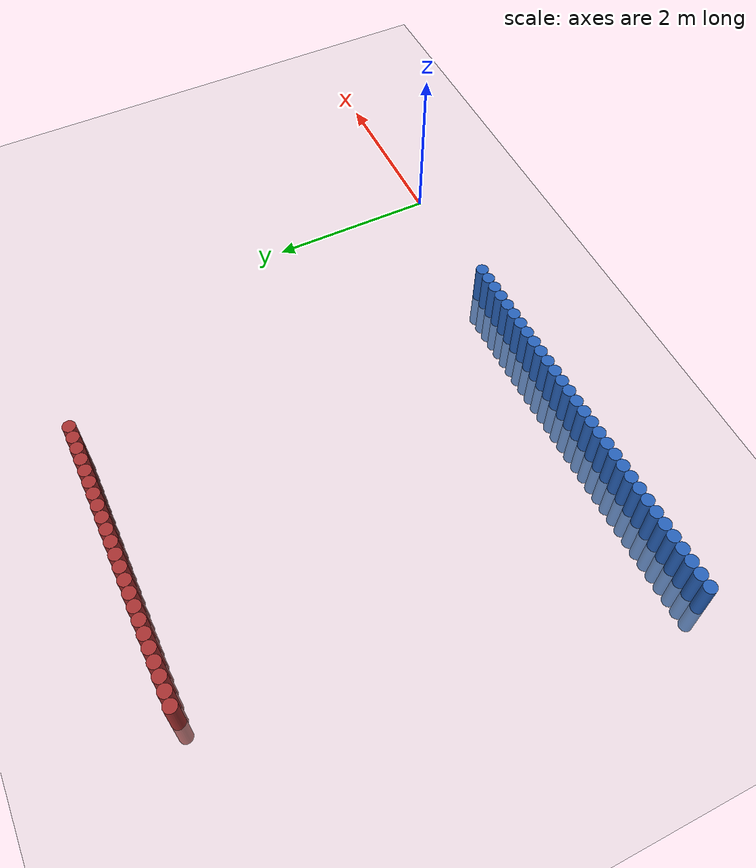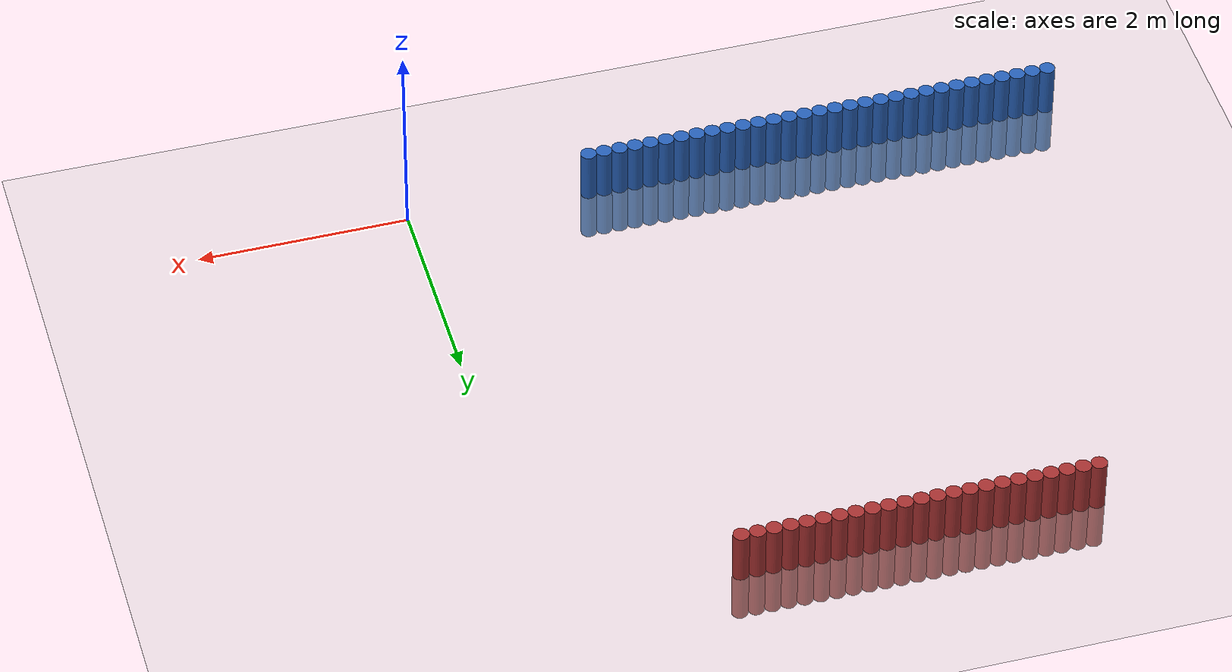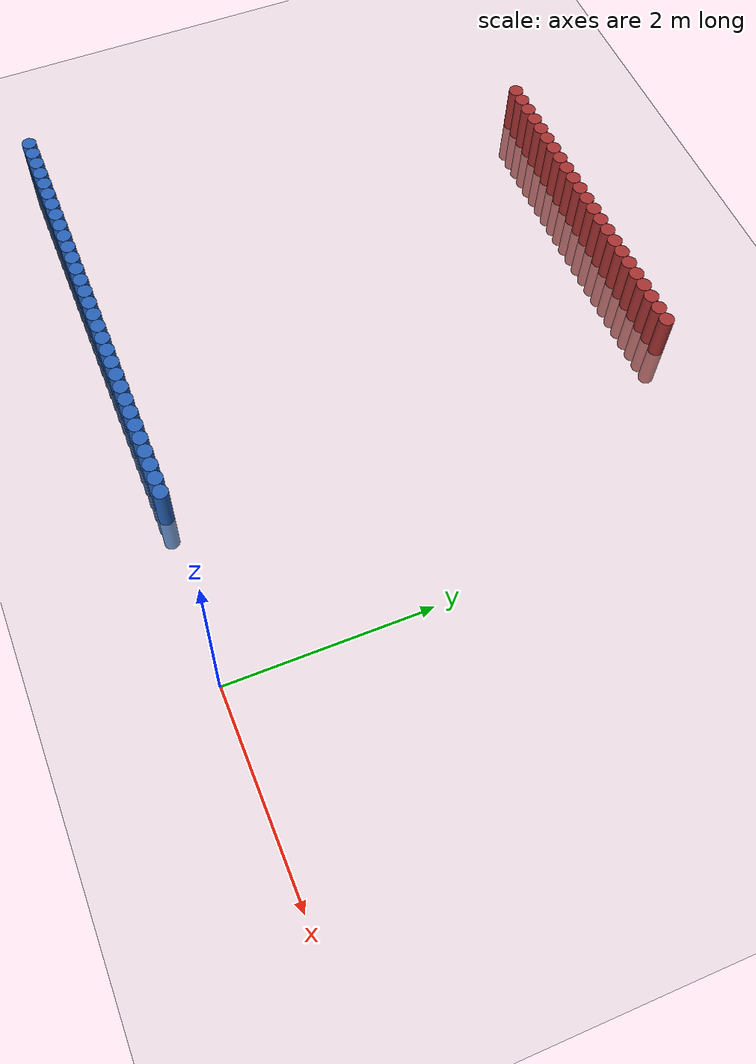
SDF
<sdf version="1.6">
 <world name="default">
  <model name="ground_plane">
   <static>1</static>
   <link name="link">
    <collision name="collision">
     <geometry><plane><normal>0 0 1</normal><size>100 100</size></plane></geometry>
     <surface><friction><ode><mu>100</mu><mu2>50</mu2></ode></friction></surface>
    </collision>
    <visual name="visual">
     <cast_shadows>0</cast_shadows>
     <geometry><plane><normal>0 0 1</normal><size>100 100</size></plane></geometry>
     <material>
      <script><uri>file://media/materials/scripts/gazebo.material</uri><name>Gazebo/Grey</name></script>
     </material>
    </visual>
   </link>
  </model>
  <model name="unit_cylinder_11">
   <static>1</static>
   <pose>-1.725000 0.075000 0.000000 0.000000 0.000000 0.000000</pose>
   <link name="link">
    <inertial>
     <mass>1</mass>
     <inertia><ixx>0.145833</ixx><ixy>0</ixy><ixz>0</ixz><iyy>0.145833</iyy><iyz>0</iyz><izz>0.125</izz></inertia>
    </inertial>
    <collision name="collision">
     <geometry><cylinder><radius>0.075000</radius><length>1</length></cylinder></geometry>
    </collision>
    <visual name="visual">
     <geometry><cylinder><radius>0.075000</radius><length>1</length></cylinder></geometry>
     <material>
      <ambient>0.152000 0.379000 0.720000 1</ambient>
      <diffuse>0.152000 0.379000 0.720000 1</diffuse>
     </material>
     <material>
      <script><name>Gazebo/Grey</name><uri>file://media/materials/scripts/gazebo.material</uri></script>
     </material>
    </visual>
   </link>
  </model>
  <model name="unit_cylinder_12">
   <static>1</static>
   <pose>-1.875000 0.075000 0.000000 0.000000 0.000000 0.000000</pose>
   <link name="link">
    <inertial>
     <mass>1</mass>
     <inertia><ixx>0.145833</ixx><ixy>0</ixy><ixz>0</ixz><iyy>0.145833</iyy><iyz>0</iyz><izz>0.125</izz></inertia>
    </inertial>
    <collision name="collision">
     <geometry><cylinder><radius>0.075000</radius><length>1</length></cylinder></geometry>
    </collision>
    <visual name="visual">
     <geometry><cylinder><radius>0.075000</radius><length>1</length></cylinder></geometry>
     <material>
      <ambient>0.152000 0.379000 0.720000 1</ambient>
      <diffuse>0.152000 0.379000 0.720000 1</diffuse>
     </material>
     <material>
      <script><name>Gazebo/Grey</name><uri>file://media/materials/scripts/gazebo.material</uri></script>
     </material>
    </visual>
   </link>
  </model>
  <model name="unit_cylinder_13">
   <static>1</static>
   <pose>-2.025000 0.075000 0.000000 0.000000 0.000000 0.000000</pose>
   <link name="link">
    <inertial>
     <mass>1</mass>
     <inertia><ixx>0.145833</ixx><ixy>0</ixy><ixz>0</ixz><iyy>0.145833</iyy><iyz>0</iyz><izz>0.125</izz></inertia>
    </inertial>
    <collision name="collision">
     <geometry><cylinder><radius>0.075000</radius><length>1</length></cylinder></geometry>
    </collision>
    <visual name="visual">
     <geometry><cylinder><radius>0.075000</radius><length>1</length></cylinder></geometry>
     <material>
      <ambient>0.152000 0.379000 0.720000 1</ambient>
      <diffuse>0.152000 0.379000 0.720000 1</diffuse>
     </material>
     <material>
      <script><name>Gazebo/Grey</name><uri>file://media/materials/scripts/gazebo.material</uri></script>
     </material>
    </visual>
   </link>
  </model>
  <model name="unit_cylinder_14">
   <static>1</static>
   <pose>-2.175000 0.075000 0.000000 0.000000 0.000000 0.000000</pose>
   <link name="link">
    <inertial>
     <mass>1</mass>
     <inertia><ixx>0.145833</ixx><ixy>0</ixy><ixz>0</ixz><iyy>0.145833</iyy><iyz>0</iyz><izz>0.125</izz></inertia>
    </inertial>
    <collision name="collision">
     <geometry><cylinder><radius>0.075000</radius><length>1</length></cylinder></geometry>
    </collision>
    <visual name="visual">
     <geometry><cylinder><radius>0.075000</radius><length>1</length></cylinder></geometry>
     <material>
      <ambient>0.152000 0.379000 0.720000 1</ambient>
      <diffuse>0.152000 0.379000 0.720000 1</diffuse>
     </material>
     <material>
      <script><name>Gazebo/Grey</name><uri>file://media/materials/scripts/gazebo.material</uri></script>
     </material>
    </visual>
   </link>
  </model>
  <model name="unit_cylinder_15">
   <static>1</static>
   <pose>-2.325000 0.075000 0.000000 0.000000 0.000000 0.000000</pose>
   <link name="link">
    <inertial>
     <mass>1</mass>
     <inertia><ixx>0.145833</ixx><ixy>0</ixy><ixz>0</ixz><iyy>0.145833</iyy><iyz>0</iyz><izz>0.125</izz></inertia>
    </inertial>
    <collision name="collision">
     <geometry><cylinder><radius>0.075000</radius><length>1</length></cylinder></geometry>
    </collision>
    <visual name="visual">
     <geometry><cylinder><radius>0.075000</radius><length>1</length></cylinder></geometry>
     <material>
      <ambient>0.152000 0.379000 0.720000 1</ambient>
      <diffuse>0.152000 0.379000 0.720000 1</diffuse>
     </material>
     <material>
      <script><name>Gazebo/Grey</name><uri>file://media/materials/scripts/gazebo.material</uri></script>
     </material>
    </visual>
   </link>
  </model>
  <model name="unit_cylinder_16">
   <static>1</static>
   <pose>-2.475000 0.075000 0.000000 0.000000 0.000000 0.000000</pose>
   <link name="link">
    <inertial>
     <mass>1</mass>
     <inertia><ixx>0.145833</ixx><ixy>0</ixy><ixz>0</ixz><iyy>0.145833</iyy><iyz>0</iyz><izz>0.125</izz></inertia>
    </inertial>
    <collision name="collision">
     <geometry><cylinder><radius>0.075000</radius><length>1</length></cylinder></geometry>
    </collision>
    <visual name="visual">
     <geometry><cylinder><radius>0.075000</radius><length>1</length></cylinder></geometry>
     <material>
      <ambient>0.152000 0.379000 0.720000 1</ambient>
      <diffuse>0.152000 0.379000 0.720000 1</diffuse>
     </material>
     <material>
      <script><name>Gazebo/Grey</name><uri>file://media/materials/scripts/gazebo.material</uri></script>
     </material>
    </visual>
   </link>
  </model>
  <model name="unit_cylinder_17">
   <static>1</static>
   <pose>-2.625000 0.075000 0.000000 0.000000 0.000000 0.000000</pose>
   <link name="link">
    <inertial>
     <mass>1</mass>
     <inertia><ixx>0.145833</ixx><ixy>0</ixy><ixz>0</ixz><iyy>0.145833</iyy><iyz>0</iyz><izz>0.125</izz></inertia>
    </inertial>
    <collision name="collision">
     <geometry><cylinder><radius>0.075000</radius><length>1</length></cylinder></geometry>
    </collision>
    <visual name="visual">
     <geometry><cylinder><radius>0.075000</radius><length>1</length></cylinder></geometry>
     <material>
      <ambient>0.152000 0.379000 0.720000 1</ambient>
      <diffuse>0.152000 0.379000 0.720000 1</diffuse>
     </material>
     <material>
      <script><name>Gazebo/Grey</name><uri>file://media/materials/scripts/gazebo.material</uri></script>
     </material>
    </visual>
   </link>
  </model>
  <model name="unit_cylinder_18">
   <static>1</static>
   <pose>-2.775000 0.075000 0.000000 0.000000 0.000000 0.000000</pose>
   <link name="link">
    <inertial>
     <mass>1</mass>
     <inertia><ixx>0.145833</ixx><ixy>0</ixy><ixz>0</ixz><iyy>0.145833</iyy><iyz>0</iyz><izz>0.125</izz></inertia>
    </inertial>
    <collision name="collision">
     <geometry><cylinder><radius>0.075000</radius><length>1</length></cylinder></geometry>
    </collision>
    <visual name="visual">
     <geometry><cylinder><radius>0.075000</radius><length>1</length></cylinder></geometry>
     <material>
      <ambient>0.152000 0.379000 0.720000 1</ambient>
      <diffuse>0.152000 0.379000 0.720000 1</diffuse>
     </material>
     <material>
      <script><name>Gazebo/Grey</name><uri>file://media/materials/scripts/gazebo.material</uri></script>
     </material>
    </visual>
   </link>
  </model>
  <model name="unit_cylinder_19">
   <static>1</static>
   <pose>-2.925000 0.075000 0.000000 0.000000 0.000000 0.000000</pose>
   <link name="link">
    <inertial>
     <mass>1</mass>
     <inertia><ixx>0.145833</ixx><ixy>0</ixy><ixz>0</ixz><iyy>0.145833</iyy><iyz>0</iyz><izz>0.125</izz></inertia>
    </inertial>
    <collision name="collision">
     <geometry><cylinder><radius>0.075000</radius><length>1</length></cylinder></geometry>
    </collision>
    <visual name="visual">
     <geometry><cylinder><radius>0.075000</radius><length>1</length></cylinder></geometry>
     <material>
      <ambient>0.152000 0.379000 0.720000 1</ambient>
      <diffuse>0.152000 0.379000 0.720000 1</diffuse>
     </material>
     <material>
      <script><name>Gazebo/Grey</name><uri>file://media/materials/scripts/gazebo.material</uri></script>
     </material>
    </visual>
   </link>
  </model>
  <model name="unit_cylinder_20">
   <static>1</static>
   <pose>-3.075000 0.075000 0.000000 0.000000 0.000000 0.000000</pose>
   <link name="link">
    <inertial>
     <mass>1</mass>
     <inertia><ixx>0.145833</ixx><ixy>0</ixy><ixz>0</ixz><iyy>0.145833</iyy><iyz>0</iyz><izz>0.125</izz></inertia>
    </inertial>
    <collision name="collision">
     <geometry><cylinder><radius>0.075000</radius><length>1</length></cylinder></geometry>
    </collision>
    <visual name="visual">
     <geometry><cylinder><radius>0.075000</radius><length>1</length></cylinder></geometry>
     <material>
      <ambient>0.152000 0.379000 0.720000 1</ambient>
      <diffuse>0.152000 0.379000 0.720000 1</diffuse>
     </material>
     <material>
      <script><name>Gazebo/Grey</name><uri>file://media/materials/scripts/gazebo.material</uri></script>
     </material>
    </visual>
   </link>
  </model>
  <model name="unit_cylinder_21">
   <static>1</static>
   <pose>-3.225000 0.075000 0.000000 0.000000 0.000000 0.000000</pose>
   <link name="link">
    <inertial>
     <mass>1</mass>
     <inertia><ixx>0.145833</ixx><ixy>0</ixy><ixz>0</ixz><iyy>0.145833</iyy><iyz>0</iyz><izz>0.125</izz></inertia>
    </inertial>
    <collision name="collision">
     <geometry><cylinder><radius>0.075000</radius><length>1</length></cylinder></geometry>
    </collision>
    <visual name="visual">
     <geometry><cylinder><radius>0.075000</radius><length>1</length></cylinder></geometry>
     <material>
      <ambient>0.152000 0.379000 0.720000 1</ambient>
      <diffuse>0.152000 0.379000 0.720000 1</diffuse>
     </material>
     <material>
      <script><name>Gazebo/Grey</name><uri>file://media/materials/scripts/gazebo.material</uri></script>
     </material>
    </visual>
   </link>
  </model>
  <model name="unit_cylinder_22">
   <static>1</static>
   <pose>-3.375000 0.075000 0.000000 0.000000 0.000000 0.000000</pose>
   <link name="link">
    <inertial>
     <mass>1</mass>
     <inertia><ixx>0.145833</ixx><ixy>0</ixy><ixz>0</ixz><iyy>0.145833</iyy><iyz>0</iyz><izz>0.125</izz></inertia>
    </inertial>
    <collision name="collision">
     <geometry><cylinder><radius>0.075000</radius><length>1</length></cylinder></geometry>
    </collision>
    <visual name="visual">
     <geometry><cylinder><radius>0.075000</radius><length>1</length></cylinder></geometry>
     <material>
      <ambient>0.152000 0.379000 0.720000 1</ambient>
      <diffuse>0.152000 0.379000 0.720000 1</diffuse>
     </material>
     <material>
      <script><name>Gazebo/Grey</name><uri>file://media/materials/scripts/gazebo.material</uri></script>
     </material>
    </visual>
   </link>
  </model>
  <model name="unit_cylinder_23">
   <static>1</static>
   <pose>-3.525000 0.075000 0.000000 0.000000 0.000000 0.000000</pose>
   <link name="link">
    <inertial>
     <mass>1</mass>
     <inertia><ixx>0.145833</ixx><ixy>0</ixy><ixz>0</ixz><iyy>0.145833</iyy><iyz>0</iyz><izz>0.125</izz></inertia>
    </inertial>
    <collision name="collision">
     <geometry><cylinder><radius>0.075000</radius><length>1</length></cylinder></geometry>
    </collision>
    <visual name="visual">
     <geometry><cylinder><radius>0.075000</radius><length>1</length></cylinder></geometry>
     <material>
      <ambient>0.152000 0.379000 0.720000 1</ambient>
      <diffuse>0.152000 0.379000 0.720000 1</diffuse>
     </material>
     <material>
      <script><name>Gazebo/Grey</name><uri>file://media/materials/scripts/gazebo.material</uri></script>
     </material>
    </visual>
   </link>
  </model>
  <model name="unit_cylinder_24">
   <static>1</static>
   <pose>-3.675000 0.075000 0.000000 0.000000 0.000000 0.000000</pose>
   <link name="link">
    <inertial>
     <mass>1</mass>
     <inertia><ixx>0.145833</ixx><ixy>0</ixy><ixz>0</ixz><iyy>0.145833</iyy><iyz>0</iyz><izz>0.125</izz></inertia>
    </inertial>
    <collision name="collision">
     <geometry><cylinder><radius>0.075000</radius><length>1</length></cylinder></geometry>
    </collision>
    <visual name="visual">
     <geometry><cylinder><radius>0.075000</radius><length>1</length></cylinder></geometry>
     <material>
      <ambient>0.152000 0.379000 0.720000 1</ambient>
      <diffuse>0.152000 0.379000 0.720000 1</diffuse>
     </material>
     <material>
      <script><name>Gazebo/Grey</name><uri>file://media/materials/scripts/gazebo.material</uri></script>
     </material>
    </visual>
   </link>
  </model>
  <model name="unit_cylinder_25">
   <static>1</static>
   <pose>-3.825000 0.075000 0.000000 0.000000 0.000000 0.000000</pose>
   <link name="link">
    <inertial>
     <mass>1</mass>
     <inertia><ixx>0.145833</ixx><ixy>0</ixy><ixz>0</ixz><iyy>0.145833</iyy><iyz>0</iyz><izz>0.125</izz></inertia>
    </inertial>
    <collision name="collision">
     <geometry><cylinder><radius>0.075000</radius><length>1</length></cylinder></geometry>
    </collision>
    <visual name="visual">
     <geometry><cylinder><radius>0.075000</radius><length>1</length></cylinder></geometry>
     <material>
      <ambient>0.152000 0.379000 0.720000 1</ambient>
      <diffuse>0.152000 0.379000 0.720000 1</diffuse>
     </material>
     <material>
      <script><name>Gazebo/Grey</name><uri>file://media/materials/scripts/gazebo.material</uri></script>
     </material>
    </visual>
   </link>
  </model>
  <model name="unit_cylinder_26">
   <static>1</static>
   <pose>-3.975000 0.075000 0.000000 0.000000 0.000000 0.000000</pose>
   <link name="link">
    <inertial>
     <mass>1</mass>
     <inertia><ixx>0.145833</ixx><ixy>0</ixy><ixz>0</ixz><iyy>0.145833</iyy><iyz>0</iyz><izz>0.125</izz></inertia>
    </inertial>
    <collision name="collision">
     <geometry><cylinder><radius>0.075000</radius><length>1</length></cylinder></geometry>
    </collision>
    <visual name="visual">
     <geometry><cylinder><radius>0.075000</radius><length>1</length></cylinder></geometry>
     <material>
      <ambient>0.152000 0.379000 0.720000 1</ambient>
      <diffuse>0.152000 0.379000 0.720000 1</diffuse>
     </material>
     <material>
      <script><name>Gazebo/Grey</name><uri>file://media/materials/scripts/gazebo.material</uri></script>
     </material>
    </visual>
   </link>
  </model>
  <model name="unit_cylinder_27">
   <static>1</static>
   <pose>-4.125000 0.075000 0.000000 0.000000 0.000000 0.000000</pose>
   <link name="link">
    <inertial>
     <mass>1</mass>
     <inertia><ixx>0.145833</ixx><ixy>0</ixy><ixz>0</ixz><iyy>0.145833</iyy><iyz>0</iyz><izz>0.125</izz></inertia>
    </inertial>
    <collision name="collision">
     <geometry><cylinder><radius>0.075000</radius><length>1</length></cylinder></geometry>
    </collision>
    <visual name="visual">
     <geometry><cylinder><radius>0.075000</radius><length>1</length></cylinder></geometry>
     <material>
      <ambient>0.152000 0.379000 0.720000 1</ambient>
      <diffuse>0.152000 0.379000 0.720000 1</diffuse>
     </material>
     <material>
      <script><name>Gazebo/Grey</name><uri>file://media/materials/scripts/gazebo.material</uri></script>
     </material>
    </visual>
   </link>
  </model>
  <model name="unit_cylinder_28">
   <static>1</static>
   <pose>-4.275000 0.075000 0.000000 0.000000 0.000000 0.000000</pose>
   <link name="link">
    <inertial>
     <mass>1</mass>
     <inertia><ixx>0.145833</ixx><ixy>0</ixy><ixz>0</ixz><iyy>0.145833</iyy><iyz>0</iyz><izz>0.125</izz></inertia>
    </inertial>
    <collision name="collision">
     <geometry><cylinder><radius>0.075000</radius><length>1</length></cylinder></geometry>
    </collision>
    <visual name="visual">
     <geometry><cylinder><radius>0.075000</radius><length>1</length></cylinder></geometry>
     <material>
      <ambient>0.152000 0.379000 0.720000 1</ambient>
      <diffuse>0.152000 0.379000 0.720000 1</diffuse>
     </material>
     <material>
      <script><name>Gazebo/Grey</name><uri>file://media/materials/scripts/gazebo.material</uri></script>
     </material>
    </visual>
   </link>
  </model>
  <model name="unit_cylinder_29">
   <static>1</static>
   <pose>-4.425000 0.075000 0.000000 0.000000 0.000000 0.000000</pose>
   <link name="link">
    <inertial>
     <mass>1</mass>
     <inertia><ixx>0.145833</ixx><ixy>0</ixy><ixz>0</ixz><iyy>0.145833</iyy><iyz>0</iyz><izz>0.125</izz></inertia>
    </inertial>
    <collision name="collision">
     <geometry><cylinder><radius>0.075000</radius><length>1</length></cylinder></geometry>
    </collision>
    <visual name="visual">
     <geometry><cylinder><radius>0.075000</radius><length>1</length></cylinder></geometry>
     <material>
      <ambient>0.152000 0.379000 0.720000 1</ambient>
      <diffuse>0.152000 0.379000 0.720000 1</diffuse>
     </material>
     <material>
      <script><name>Gazebo/Grey</name><uri>file://media/materials/scripts/gazebo.material</uri></script>
     </material>
    </visual>
   </link>
  </model>
  <model name="unit_cylinder_30">
   <static>1</static>
   <pose>-4.575000 0.075000 0.000000 0.000000 0.000000 0.000000</pose>
   <link name="link">
    <inertial>
     <mass>1</mass>
     <inertia><ixx>0.145833</ixx><ixy>0</ixy><ixz>0</ixz><iyy>0.145833</iyy><iyz>0</iyz><izz>0.125</izz></inertia>
    </inertial>
    <collision name="collision">
     <geometry><cylinder><radius>0.075000</radius><length>1</length></cylinder></geometry>
    </collision>
    <visual name="visual">
     <geometry><cylinder><radius>0.075000</radius><length>1</length></cylinder></geometry>
     <material>
      <ambient>0.152000 0.379000 0.720000 1</ambient>
      <diffuse>0.152000 0.379000 0.720000 1</diffuse>
     </material>
     <material>
      <script><name>Gazebo/Grey</name><uri>file://media/materials/scripts/gazebo.material</uri></script>
     </material>
    </visual>
   </link>
  </model>
  <model name="unit_cylinder_31">
   <static>1</static>
   <pose>-4.725000 0.075000 0.000000 0.000000 0.000000 0.000000</pose>
   <link name="link">
    <inertial>
     <mass>1</mass>
     <inertia><ixx>0.145833</ixx><ixy>0</ixy><ixz>0</ixz><iyy>0.145833</iyy><iyz>0</iyz><izz>0.125</izz></inertia>
    </inertial>
    <collision name="collision">
     <geometry><cylinder><radius>0.075000</radius><length>1</length></cylinder></geometry>
    </collision>
    <visual name="visual">
     <geometry><cylinder><radius>0.075000</radius><length>1</length></cylinder></geometry>
     <material>
      <ambient>0.152000 0.379000 0.720000 1</ambient>
      <diffuse>0.152000 0.379000 0.720000 1</diffuse>
     </material>
     <material>
      <script><name>Gazebo/Grey</name><uri>file://media/materials/scripts/gazebo.material</uri></script>
     </material>
    </visual>
   </link>
  </model>
  <model name="unit_cylinder_32">
   <static>1</static>
   <pose>-4.875000 0.075000 0.000000 0.000000 0.000000 0.000000</pose>
   <link name="link">
    <inertial>
     <mass>1</mass>
     <inertia><ixx>0.145833</ixx><ixy>0</ixy><ixz>0</ixz><iyy>0.145833</iyy><iyz>0</iyz><izz>0.125</izz></inertia>
    </inertial>
    <collision name="collision">
     <geometry><cylinder><radius>0.075000</radius><length>1</length></cylinder></geometry>
    </collision>
    <visual name="visual">
     <geometry><cylinder><radius>0.075000</radius><length>1</length></cylinder></geometry>
     <material>
      <ambient>0.152000 0.379000 0.720000 1</ambient>
      <diffuse>0.152000 0.379000 0.720000 1</diffuse>
     </material>
     <material>
      <script><name>Gazebo/Grey</name><uri>file://media/materials/scripts/gazebo.material</uri></script>
     </material>
    </visual>
   </link>
  </model>
  <model name="unit_cylinder_33">
   <static>1</static>
   <pose>-5.025000 0.075000 0.000000 0.000000 0.000000 0.000000</pose>
   <link name="link">
    <inertial>
     <mass>1</mass>
     <inertia><ixx>0.145833</ixx><ixy>0</ixy><ixz>0</ixz><iyy>0.145833</iyy><iyz>0</iyz><izz>0.125</izz></inertia>
    </inertial>
    <collision name="collision">
     <geometry><cylinder><radius>0.075000</radius><length>1</length></cylinder></geometry>
    </collision>
    <visual name="visual">
     <geometry><cylinder><radius>0.075000</radius><length>1</length></cylinder></geometry>
     <material>
      <ambient>0.152000 0.379000 0.720000 1</ambient>
      <diffuse>0.152000 0.379000 0.720000 1</diffuse>
     </material>
     <material>
      <script><name>Gazebo/Grey</name><uri>file://media/materials/scripts/gazebo.material</uri></script>
     </material>
    </visual>
   </link>
  </model>
  <model name="unit_cylinder_34">
   <static>1</static>
   <pose>-5.175000 0.075000 0.000000 0.000000 0.000000 0.000000</pose>
   <link name="link">
    <inertial>
     <mass>1</mass>
     <inertia><ixx>0.145833</ixx><ixy>0</ixy><ixz>0</ixz><iyy>0.145833</iyy><iyz>0</iyz><izz>0.125</izz></inertia>
    </inertial>
    <collision name="collision">
     <geometry><cylinder><radius>0.075000</radius><length>1</length></cylinder></geometry>
    </collision>
    <visual name="visual">
     <geometry><cylinder><radius>0.075000</radius><length>1</length></cylinder></geometry>
     <material>
      <ambient>0.152000 0.379000 0.720000 1</ambient>
      <diffuse>0.152000 0.379000 0.720000 1</diffuse>
     </material>
     <material>
      <script><name>Gazebo/Grey</name><uri>file://media/materials/scripts/gazebo.material</uri></script>
     </material>
    </visual>
   </link>
  </model>
  <model name="unit_cylinder_35">
   <static>1</static>
   <pose>-5.325000 0.075000 0.000000 0.000000 0.000000 0.000000</pose>
   <link name="link">
    <inertial>
     <mass>1</mass>
     <inertia><ixx>0.145833</ixx><ixy>0</ixy><ixz>0</ixz><iyy>0.145833</iyy><iyz>0</iyz><izz>0.125</izz></inertia>
    </inertial>
    <collision name="collision">
     <geometry><cylinder><radius>0.075000</radius><length>1</length></cylinder></geometry>
    </collision>
    <visual name="visual">
     <geometry><cylinder><radius>0.075000</radius><length>1</length></cylinder></geometry>
     <material>
      <ambient>0.152000 0.379000 0.720000 1</ambient>
      <diffuse>0.152000 0.379000 0.720000 1</diffuse>
     </material>
     <material>
      <script><name>Gazebo/Grey</name><uri>file://media/materials/scripts/gazebo.material</uri></script>
     </material>
    </visual>
   </link>
  </model>
  <model name="unit_cylinder_36">
   <static>1</static>
   <pose>-5.475000 0.075000 0.000000 0.000000 0.000000 0.000000</pose>
   <link name="link">
    <inertial>
     <mass>1</mass>
     <inertia><ixx>0.145833</ixx><ixy>0</ixy><ixz>0</ixz><iyy>0.145833</iyy><iyz>0</iyz><izz>0.125</izz></inertia>
    </inertial>
    <collision name="collision">
     <geometry><cylinder><radius>0.075000</radius><length>1</length></cylinder></geometry>
    </collision>
    <visual name="visual">
     <geometry><cylinder><radius>0.075000</radius><length>1</length></cylinder></geometry>
     <material>
      <ambient>0.152000 0.379000 0.720000 1</ambient>
      <diffuse>0.152000 0.379000 0.720000 1</diffuse>
     </material>
     <material>
      <script><name>Gazebo/Grey</name><uri>file://media/materials/scripts/gazebo.material</uri></script>
     </material>
    </visual>
   </link>
  </model>
  <model name="unit_cylinder_37">
   <static>1</static>
   <pose>-5.625000 0.075000 0.000000 0.000000 0.000000 0.000000</pose>
   <link name="link">
    <inertial>
     <mass>1</mass>
     <inertia><ixx>0.145833</ixx><ixy>0</ixy><ixz>0</ixz><iyy>0.145833</iyy><iyz>0</iyz><izz>0.125</izz></inertia>
    </inertial>
    <collision name="collision">
     <geometry><cylinder><radius>0.075000</radius><length>1</length></cylinder></geometry>
    </collision>
    <visual name="visual">
     <geometry><cylinder><radius>0.075000</radius><length>1</length></cylinder></geometry>
     <material>
      <ambient>0.152000 0.379000 0.720000 1</ambient>
      <diffuse>0.152000 0.379000 0.720000 1</diffuse>
     </material>
     <material>
      <script><name>Gazebo/Grey</name><uri>file://media/materials/scripts/gazebo.material</uri></script>
     </material>
    </visual>
   </link>
  </model>
  <model name="unit_cylinder_38">
   <static>1</static>
   <pose>-5.775000 0.075000 0.000000 0.000000 0.000000 0.000000</pose>
   <link name="link">
    <inertial>
     <mass>1</mass>
     <inertia><ixx>0.145833</ixx><ixy>0</ixy><ixz>0</ixz><iyy>0.145833</iyy><iyz>0</iyz><izz>0.125</izz></inertia>
    </inertial>
    <collision name="collision">
     <geometry><cylinder><radius>0.075000</radius><length>1</length></cylinder></geometry>
    </collision>
    <visual name="visual">
     <geometry><cylinder><radius>0.075000</radius><length>1</length></cylinder></geometry>
     <material>
      <ambient>0.152000 0.379000 0.720000 1</ambient>
      <diffuse>0.152000 0.379000 0.720000 1</diffuse>
     </material>
     <material>
      <script><name>Gazebo/Grey</name><uri>file://media/materials/scripts/gazebo.material</uri></script>
     </material>
    </visual>
   </link>
  </model>
  <model name="unit_cylinder_39">
   <static>1</static>
   <pose>-5.925000 0.075000 0.000000 0.000000 0.000000 0.000000</pose>
   <link name="link">
    <inertial>
     <mass>1</mass>
     <inertia><ixx>0.145833</ixx><ixy>0</ixy><ixz>0</ixz><iyy>0.145833</iyy><iyz>0</iyz><izz>0.125</izz></inertia>
    </inertial>
    <collision name="collision">
     <geometry><cylinder><radius>0.075000</radius><length>1</length></cylinder></geometry>
    </collision>
    <visual name="visual">
     <geometry><cylinder><radius>0.075000</radius><length>1</length></cylinder></geometry>
     <material>
      <ambient>0.152000 0.379000 0.720000 1</ambient>
      <diffuse>0.152000 0.379000 0.720000 1</diffuse>
     </material>
     <material>
      <script><name>Gazebo/Grey</name><uri>file://media/materials/scripts/gazebo.material</uri></script>
     </material>
    </visual>
   </link>
  </model>
  <model name="unit_cylinder_40">
   <static>1</static>
   <pose>-6.075000 0.075000 0.000000 0.000000 0.000000 0.000000</pose>
   <link name="link">
    <inertial>
     <mass>1</mass>
     <inertia><ixx>0.145833</ixx><ixy>0</ixy><ixz>0</ixz><iyy>0.145833</iyy><iyz>0</iyz><izz>0.125</izz></inertia>
    </inertial>
    <collision name="collision">
     <geometry><cylinder><radius>0.075000</radius><length>1</length></cylinder></geometry>
    </collision>
    <visual name="visual">
     <geometry><cylinder><radius>0.075000</radius><length>1</length></cylinder></geometry>
     <material>
      <ambient>0.152000 0.379000 0.720000 1</ambient>
      <diffuse>0.152000 0.379000 0.720000 1</diffuse>
     </material>
     <material>
      <script><name>Gazebo/Grey</name><uri>file://media/materials/scripts/gazebo.material</uri></script>
     </material>
    </visual>
   </link>
  </model>
  <model name="unit_cylinder_41">
   <static>1</static>
   <pose>-6.225000 0.075000 0.000000 0.000000 0.000000 0.000000</pose>
   <link name="link">
    <inertial>
     <mass>1</mass>
     <inertia><ixx>0.145833</ixx><ixy>0</ixy><ixz>0</ixz><iyy>0.145833</iyy><iyz>0</iyz><izz>0.125</izz></inertia>
    </inertial>
    <collision name="collision">
     <geometry><cylinder><radius>0.075000</radius><length>1</length></cylinder></geometry>
    </collision>
    <visual name="visual">
     <geometry><cylinder><radius>0.075000</radius><length>1</length></cylinder></geometry>
     <material>
      <ambient>0.152000 0.379000 0.720000 1</ambient>
      <diffuse>0.152000 0.379000 0.720000 1</diffuse>
     </material>
     <material>
      <script><name>Gazebo/Grey</name><uri>file://media/materials/scripts/gazebo.material</uri></script>
     </material>
    </visual>
   </link>
  </model>
  <model name="unit_cylinder_258">
   <static>1</static>
   <pose>-5.025000 5.175000 0.000000 0.000000 0.000000 0.000000</pose>
   <link name="link">
    <inertial>
     <mass>1</mass>
     <inertia><ixx>0.145833</ixx><ixy>0</ixy><ixz>0</ixz><iyy>0.145833</iyy><iyz>0</iyz><izz>0.125</izz></inertia>
    </inertial>
    <collision name="collision">
     <geometry><cylinder><radius>0.075000</radius><length>1</length></cylinder></geometry>
    </collision>
    <visual name="visual">
     <geometry><cylinder><radius>0.075000</radius><length>1</length></cylinder></geometry>
     <material>
      <ambient>0.648000 0.192000 0.192000 1</ambient>
      <diffuse>0.648000 0.192000 0.192000 1</diffuse>
     </material>
     <material>
      <script><name>Gazebo/Grey</name><uri>file://media/materials/scripts/gazebo.material</uri></script>
     </material>
    </visual>
   </link>
  </model>
  <model name="unit_cylinder_263">
   <static>1</static>
   <pose>-4.875000 5.175000 0.000000 0.000000 0.000000 0.000000</pose>
   <link name="link">
    <inertial>
     <mass>1</mass>
     <inertia><ixx>0.145833</ixx><ixy>0</ixy><ixz>0</ixz><iyy>0.145833</iyy><iyz>0</iyz><izz>0.125</izz></inertia>
    </inertial>
    <collision name="collision">
     <geometry><cylinder><radius>0.075000</radius><length>1</length></cylinder></geometry>
    </collision>
    <visual name="visual">
     <geometry><cylinder><radius>0.075000</radius><length>1</length></cylinder></geometry>
     <material>
      <ambient>0.648000 0.192000 0.192000 1</ambient>
      <diffuse>0.648000 0.192000 0.192000 1</diffuse>
     </material>
     <material>
      <script><name>Gazebo/Grey</name><uri>file://media/materials/scripts/gazebo.material</uri></script>
     </material>
    </visual>
   </link>
  </model>
  <model name="unit_cylinder_265">
   <static>1</static>
   <pose>-4.725000 5.175000 0.000000 0.000000 0.000000 0.000000</pose>
   <link name="link">
    <inertial>
     <mass>1</mass>
     <inertia><ixx>0.145833</ixx><ixy>0</ixy><ixz>0</ixz><iyy>0.145833</iyy><iyz>0</iyz><izz>0.125</izz></inertia>
    </inertial>
    <collision name="collision">
     <geometry><cylinder><radius>0.075000</radius><length>1</length></cylinder></geometry>
    </collision>
    <visual name="visual">
     <geometry><cylinder><radius>0.075000</radius><length>1</length></cylinder></geometry>
     <material>
      <ambient>0.648000 0.192000 0.192000 1</ambient>
      <diffuse>0.648000 0.192000 0.192000 1</diffuse>
     </material>
     <material>
      <script><name>Gazebo/Grey</name><uri>file://media/materials/scripts/gazebo.material</uri></script>
     </material>
    </visual>
   </link>
  </model>
  <model name="unit_cylinder_267">
   <static>1</static>
   <pose>-4.575000 5.175000 0.000000 0.000000 0.000000 0.000000</pose>
   <link name="link">
    <inertial>
     <mass>1</mass>
     <inertia><ixx>0.145833</ixx><ixy>0</ixy><ixz>0</ixz><iyy>0.145833</iyy><iyz>0</iyz><izz>0.125</izz></inertia>
    </inertial>
    <collision name="collision">
     <geometry><cylinder><radius>0.075000</radius><length>1</length></cylinder></geometry>
    </collision>
    <visual name="visual">
     <geometry><cylinder><radius>0.075000</radius><length>1</length></cylinder></geometry>
     <material>
      <ambient>0.648000 0.192000 0.192000 1</ambient>
      <diffuse>0.648000 0.192000 0.192000 1</diffuse>
     </material>
     <material>
      <script><name>Gazebo/Grey</name><uri>file://media/materials/scripts/gazebo.material</uri></script>
     </material>
    </visual>
   </link>
  </model>
  <model name="unit_cylinder_269">
   <static>1</static>
   <pose>-4.425000 5.175000 0.000000 0.000000 0.000000 0.000000</pose>
   <link name="link">
    <inertial>
     <mass>1</mass>
     <inertia><ixx>0.145833</ixx><ixy>0</ixy><ixz>0</ixz><iyy>0.145833</iyy><iyz>0</iyz><izz>0.125</izz></inertia>
    </inertial>
    <collision name="collision">
     <geometry><cylinder><radius>0.075000</radius><length>1</length></cylinder></geometry>
    </collision>
    <visual name="visual">
     <geometry><cylinder><radius>0.075000</radius><length>1</length></cylinder></geometry>
     <material>
      <ambient>0.648000 0.192000 0.192000 1</ambient>
      <diffuse>0.648000 0.192000 0.192000 1</diffuse>
     </material>
     <material>
      <script><name>Gazebo/Grey</name><uri>file://media/materials/scripts/gazebo.material</uri></script>
     </material>
    </visual>
   </link>
  </model>
  <model name="unit_cylinder_296">
   <static>1</static>
   <pose>-4.275000 5.175000 0.000000 0.000000 0.000000 0.000000</pose>
   <link name="link">
    <inertial>
     <mass>1</mass>
     <inertia><ixx>0.145833</ixx><ixy>0</ixy><ixz>0</ixz><iyy>0.145833</iyy><iyz>0</iyz><izz>0.125</izz></inertia>
    </inertial>
    <collision name="collision">
     <geometry><cylinder><radius>0.075000</radius><length>1</length></cylinder></geometry>
    </collision>
    <visual name="visual">
     <geometry><cylinder><radius>0.075000</radius><length>1</length></cylinder></geometry>
     <material>
      <ambient>0.648000 0.192000 0.192000 1</ambient>
      <diffuse>0.648000 0.192000 0.192000 1</diffuse>
     </material>
     <material>
      <script><name>Gazebo/Grey</name><uri>file://media/materials/scripts/gazebo.material</uri></script>
     </material>
    </visual>
   </link>
  </model>
  <model name="unit_cylinder_298">
   <static>1</static>
   <pose>-4.125000 5.175000 0.000000 0.000000 0.000000 0.000000</pose>
   <link name="link">
    <inertial>
     <mass>1</mass>
     <inertia><ixx>0.145833</ixx><ixy>0</ixy><ixz>0</ixz><iyy>0.145833</iyy><iyz>0</iyz><izz>0.125</izz></inertia>
    </inertial>
    <collision name="collision">
     <geometry><cylinder><radius>0.075000</radius><length>1</length></cylinder></geometry>
    </collision>
    <visual name="visual">
     <geometry><cylinder><radius>0.075000</radius><length>1</length></cylinder></geometry>
     <material>
      <ambient>0.648000 0.192000 0.192000 1</ambient>
      <diffuse>0.648000 0.192000 0.192000 1</diffuse>
     </material>
     <material>
      <script><name>Gazebo/Grey</name><uri>file://media/materials/scripts/gazebo.material</uri></script>
     </material>
    </visual>
   </link>
  </model>
  <model name="unit_cylinder_300">
   <static>1</static>
   <pose>-3.975000 5.175000 0.000000 0.000000 0.000000 0.000000</pose>
   <link name="link">
    <inertial>
     <mass>1</mass>
     <inertia><ixx>0.145833</ixx><ixy>0</ixy><ixz>0</ixz><iyy>0.145833</iyy><iyz>0</iyz><izz>0.125</izz></inertia>
    </inertial>
    <collision name="collision">
     <geometry><cylinder><radius>0.075000</radius><length>1</length></cylinder></geometry>
    </collision>
    <visual name="visual">
     <geometry><cylinder><radius>0.075000</radius><length>1</length></cylinder></geometry>
     <material>
      <ambient>0.648000 0.192000 0.192000 1</ambient>
      <diffuse>0.648000 0.192000 0.192000 1</diffuse>
     </material>
     <material>
      <script><name>Gazebo/Grey</name><uri>file://media/materials/scripts/gazebo.material</uri></script>
     </material>
    </visual>
   </link>
  </model>
  <model name="unit_cylinder_302">
   <static>1</static>
   <pose>-3.825000 5.175000 0.000000 0.000000 0.000000 0.000000</pose>
   <link name="link">
    <inertial>
     <mass>1</mass>
     <inertia><ixx>0.145833</ixx><ixy>0</ixy><ixz>0</ixz><iyy>0.145833</iyy><iyz>0</iyz><izz>0.125</izz></inertia>
    </inertial>
    <collision name="collision">
     <geometry><cylinder><radius>0.075000</radius><length>1</length></cylinder></geometry>
    </collision>
    <visual name="visual">
     <geometry><cylinder><radius>0.075000</radius><length>1</length></cylinder></geometry>
     <material>
      <ambient>0.648000 0.192000 0.192000 1</ambient>
      <diffuse>0.648000 0.192000 0.192000 1</diffuse>
     </material>
     <material>
      <script><name>Gazebo/Grey</name><uri>file://media/materials/scripts/gazebo.material</uri></script>
     </material>
    </visual>
   </link>
  </model>
  <model name="unit_cylinder_304">
   <static>1</static>
   <pose>-3.675000 5.175000 0.000000 0.000000 0.000000 0.000000</pose>
   <link name="link">
    <inertial>
     <mass>1</mass>
     <inertia><ixx>0.145833</ixx><ixy>0</ixy><ixz>0</ixz><iyy>0.145833</iyy><iyz>0</iyz><izz>0.125</izz></inertia>
    </inertial>
    <collision name="collision">
     <geometry><cylinder><radius>0.075000</radius><length>1</length></cylinder></geometry>
    </collision>
    <visual name="visual">
     <geometry><cylinder><radius>0.075000</radius><length>1</length></cylinder></geometry>
     <material>
      <ambient>0.648000 0.192000 0.192000 1</ambient>
      <diffuse>0.648000 0.192000 0.192000 1</diffuse>
     </material>
     <material>
      <script><name>Gazebo/Grey</name><uri>file://media/materials/scripts/gazebo.material</uri></script>
     </material>
    </visual>
   </link>
  </model>
  <model name="unit_cylinder_306">
   <static>1</static>
   <pose>-3.525000 5.175000 0.000000 0.000000 0.000000 0.000000</pose>
   <link name="link">
    <inertial>
     <mass>1</mass>
     <inertia><ixx>0.145833</ixx><ixy>0</ixy><ixz>0</ixz><iyy>0.145833</iyy><iyz>0</iyz><izz>0.125</izz></inertia>
    </inertial>
    <collision name="collision">
     <geometry><cylinder><radius>0.075000</radius><length>1</length></cylinder></geometry>
    </collision>
    <visual name="visual">
     <geometry><cylinder><radius>0.075000</radius><length>1</length></cylinder></geometry>
     <material>
      <ambient>0.648000 0.192000 0.192000 1</ambient>
      <diffuse>0.648000 0.192000 0.192000 1</diffuse>
     </material>
     <material>
      <script><name>Gazebo/Grey</name><uri>file://media/materials/scripts/gazebo.material</uri></script>
     </material>
    </visual>
   </link>
  </model>
  <model name="unit_cylinder_308">
   <static>1</static>
   <pose>-3.375000 5.175000 0.000000 0.000000 0.000000 0.000000</pose>
   <link name="link">
    <inertial>
     <mass>1</mass>
     <inertia><ixx>0.145833</ixx><ixy>0</ixy><ixz>0</ixz><iyy>0.145833</iyy><iyz>0</iyz><izz>0.125</izz></inertia>
    </inertial>
    <collision name="collision">
     <geometry><cylinder><radius>0.075000</radius><length>1</length></cylinder></geometry>
    </collision>
    <visual name="visual">
     <geometry><cylinder><radius>0.075000</radius><length>1</length></cylinder></geometry>
     <material>
      <ambient>0.648000 0.192000 0.192000 1</ambient>
      <diffuse>0.648000 0.192000 0.192000 1</diffuse>
     </material>
     <material>
      <script><name>Gazebo/Grey</name><uri>file://media/materials/scripts/gazebo.material</uri></script>
     </material>
    </visual>
   </link>
  </model>
  <model name="unit_cylinder_310">
   <static>1</static>
   <pose>-3.225000 5.175000 0.000000 0.000000 0.000000 0.000000</pose>
   <link name="link">
    <inertial>
     <mass>1</mass>
     <inertia><ixx>0.145833</ixx><ixy>0</ixy><ixz>0</ixz><iyy>0.145833</iyy><iyz>0</iyz><izz>0.125</izz></inertia>
    </inertial>
    <collision name="collision">
     <geometry><cylinder><radius>0.075000</radius><length>1</length></cylinder></geometry>
    </collision>
    <visual name="visual">
     <geometry><cylinder><radius>0.075000</radius><length>1</length></cylinder></geometry>
     <material>
      <ambient>0.648000 0.192000 0.192000 1</ambient>
      <diffuse>0.648000 0.192000 0.192000 1</diffuse>
     </material>
     <material>
      <script><name>Gazebo/Grey</name><uri>file://media/materials/scripts/gazebo.material</uri></script>
     </material>
    </visual>
   </link>
  </model>
  <model name="unit_cylinder_312">
   <static>1</static>
   <pose>-3.075000 5.175000 0.000000 0.000000 0.000000 0.000000</pose>
   <link name="link">
    <inertial>
     <mass>1</mass>
     <inertia><ixx>0.145833</ixx><ixy>0</ixy><ixz>0</ixz><iyy>0.145833</iyy><iyz>0</iyz><izz>0.125</izz></inertia>
    </inertial>
    <collision name="collision">
     <geometry><cylinder><radius>0.075000</radius><length>1</length></cylinder></geometry>
    </collision>
    <visual name="visual">
     <geometry><cylinder><radius>0.075000</radius><length>1</length></cylinder></geometry>
     <material>
      <ambient>0.648000 0.192000 0.192000 1</ambient>
      <diffuse>0.648000 0.192000 0.192000 1</diffuse>
     </material>
     <material>
      <script><name>Gazebo/Grey</name><uri>file://media/materials/scripts/gazebo.material</uri></script>
     </material>
    </visual>
   </link>
  </model>
  <model name="unit_cylinder_314">
   <static>1</static>
   <pose>-2.925000 5.175000 0.000000 0.000000 0.000000 0.000000</pose>
   <link name="link">
    <inertial>
     <mass>1</mass>
     <inertia><ixx>0.145833</ixx><ixy>0</ixy><ixz>0</ixz><iyy>0.145833</iyy><iyz>0</iyz><izz>0.125</izz></inertia>
    </inertial>
    <collision name="collision">
     <geometry><cylinder><radius>0.075000</radius><length>1</length></cylinder></geometry>
    </collision>
    <visual name="visual">
     <geometry><cylinder><radius>0.075000</radius><length>1</length></cylinder></geometry>
     <material>
      <ambient>0.648000 0.192000 0.192000 1</ambient>
      <diffuse>0.648000 0.192000 0.192000 1</diffuse>
     </material>
     <material>
      <script><name>Gazebo/Grey</name><uri>file://media/materials/scripts/gazebo.material</uri></script>
     </material>
    </visual>
   </link>
  </model>
  <model name="unit_cylinder_316">
   <static>1</static>
   <pose>-2.775000 5.175000 0.000000 0.000000 0.000000 0.000000</pose>
   <link name="link">
    <inertial>
     <mass>1</mass>
     <inertia><ixx>0.145833</ixx><ixy>0</ixy><ixz>0</ixz><iyy>0.145833</iyy><iyz>0</iyz><izz>0.125</izz></inertia>
    </inertial>
    <collision name="collision">
     <geometry><cylinder><radius>0.075000</radius><length>1</length></cylinder></geometry>
    </collision>
    <visual name="visual">
     <geometry><cylinder><radius>0.075000</radius><length>1</length></cylinder></geometry>
     <material>
      <ambient>0.648000 0.192000 0.192000 1</ambient>
      <diffuse>0.648000 0.192000 0.192000 1</diffuse>
     </material>
     <material>
      <script><name>Gazebo/Grey</name><uri>file://media/materials/scripts/gazebo.material</uri></script>
     </material>
    </visual>
   </link>
  </model>
  <model name="unit_cylinder_318">
   <static>1</static>
   <pose>-2.625000 5.175000 0.000000 0.000000 0.000000 0.000000</pose>
   <link name="link">
    <inertial>
     <mass>1</mass>
     <inertia><ixx>0.145833</ixx><ixy>0</ixy><ixz>0</ixz><iyy>0.145833</iyy><iyz>0</iyz><izz>0.125</izz></inertia>
    </inertial>
    <collision name="collision">
     <geometry><cylinder><radius>0.075000</radius><length>1</length></cylinder></geometry>
    </collision>
    <visual name="visual">
     <geometry><cylinder><radius>0.075000</radius><length>1</length></cylinder></geometry>
     <material>
      <ambient>0.648000 0.192000 0.192000 1</ambient>
      <diffuse>0.648000 0.192000 0.192000 1</diffuse>
     </material>
     <material>
      <script><name>Gazebo/Grey</name><uri>file://media/materials/scripts/gazebo.material</uri></script>
     </material>
    </visual>
   </link>
  </model>
  <model name="unit_cylinder_320">
   <static>1</static>
   <pose>-2.475000 5.175000 0.000000 0.000000 0.000000 0.000000</pose>
   <link name="link">
    <inertial>
     <mass>1</mass>
     <inertia><ixx>0.145833</ixx><ixy>0</ixy><ixz>0</ixz><iyy>0.145833</iyy><iyz>0</iyz><izz>0.125</izz></inertia>
    </inertial>
    <collision name="collision">
     <geometry><cylinder><radius>0.075000</radius><length>1</length></cylinder></geometry>
    </collision>
    <visual name="visual">
     <geometry><cylinder><radius>0.075000</radius><length>1</length></cylinder></geometry>
     <material>
      <ambient>0.648000 0.192000 0.192000 1</ambient>
      <diffuse>0.648000 0.192000 0.192000 1</diffuse>
     </material>
     <material>
      <script><name>Gazebo/Grey</name><uri>file://media/materials/scripts/gazebo.material</uri></script>
     </material>
    </visual>
   </link>
  </model>
  <model name="unit_cylinder_322">
   <static>1</static>
   <pose>-2.325000 5.175000 0.000000 0.000000 0.000000 0.000000</pose>
   <link name="link">
    <inertial>
     <mass>1</mass>
     <inertia><ixx>0.145833</ixx><ixy>0</ixy><ixz>0</ixz><iyy>0.145833</iyy><iyz>0</iyz><izz>0.125</izz></inertia>
    </inertial>
    <collision name="collision">
     <geometry><cylinder><radius>0.075000</radius><length>1</length></cylinder></geometry>
    </collision>
    <visual name="visual">
     <geometry><cylinder><radius>0.075000</radius><length>1</length></cylinder></geometry>
     <material>
      <ambient>0.648000 0.192000 0.192000 1</ambient>
      <diffuse>0.648000 0.192000 0.192000 1</diffuse>
     </material>
     <material>
      <script><name>Gazebo/Grey</name><uri>file://media/materials/scripts/gazebo.material</uri></script>
     </material>
    </visual>
   </link>
  </model>
  <model name="unit_cylinder_324">
   <static>1</static>
   <pose>-2.175000 5.175000 0.000000 0.000000 0.000000 0.000000</pose>
   <link name="link">
    <inertial>
     <mass>1</mass>
     <inertia><ixx>0.145833</ixx><ixy>0</ixy><ixz>0</ixz><iyy>0.145833</iyy><iyz>0</iyz><izz>0.125</izz></inertia>
    </inertial>
    <collision name="collision">
     <geometry><cylinder><radius>0.075000</radius><length>1</length></cylinder></geometry>
    </collision>
    <visual name="visual">
     <geometry><cylinder><radius>0.075000</radius><length>1</length></cylinder></geometry>
     <material>
      <ambient>0.648000 0.192000 0.192000 1</ambient>
      <diffuse>0.648000 0.192000 0.192000 1</diffuse>
     </material>
     <material>
      <script><name>Gazebo/Grey</name><uri>file://media/materials/scripts/gazebo.material</uri></script>
     </material>
    </visual>
   </link>
  </model>
  <model name="unit_cylinder_326">
   <static>1</static>
   <pose>-2.025000 5.175000 0.000000 0.000000 0.000000 0.000000</pose>
   <link name="link">
    <inertial>
     <mass>1</mass>
     <inertia><ixx>0.145833</ixx><ixy>0</ixy><ixz>0</ixz><iyy>0.145833</iyy><iyz>0</iyz><izz>0.125</izz></inertia>
    </inertial>
    <collision name="collision">
     <geometry><cylinder><radius>0.075000</radius><length>1</length></cylinder></geometry>
    </collision>
    <visual name="visual">
     <geometry><cylinder><radius>0.075000</radius><length>1</length></cylinder></geometry>
     <material>
      <ambient>0.648000 0.192000 0.192000 1</ambient>
      <diffuse>0.648000 0.192000 0.192000 1</diffuse>
     </material>
     <material>
      <script><name>Gazebo/Grey</name><uri>file://media/materials/scripts/gazebo.material</uri></script>
     </material>
    </visual>
   </link>
  </model>
  <model name="unit_cylinder_328">
   <static>1</static>
   <pose>-1.875000 5.175000 0.000000 0.000000 0.000000 0.000000</pose>
   <link name="link">
    <inertial>
     <mass>1</mass>
     <inertia><ixx>0.145833</ixx><ixy>0</ixy><ixz>0</ixz><iyy>0.145833</iyy><iyz>0</iyz><izz>0.125</izz></inertia>
    </inertial>
    <collision name="collision">
     <geometry><cylinder><radius>0.075000</radius><length>1</length></cylinder></geometry>
    </collision>
    <visual name="visual">
     <geometry><cylinder><radius>0.075000</radius><length>1</length></cylinder></geometry>
     <material>
      <ambient>0.648000 0.192000 0.192000 1</ambient>
      <diffuse>0.648000 0.192000 0.192000 1</diffuse>
     </material>
     <material>
      <script><name>Gazebo/Grey</name><uri>file://media/materials/scripts/gazebo.material</uri></script>
     </material>
    </visual>
   </link>
  </model>
  <model name="unit_cylinder_330">
   <static>1</static>
   <pose>-1.725000 5.175000 0.000000 0.000000 0.000000 0.000000</pose>
   <link name="link">
    <inertial>
     <mass>1</mass>
     <inertia><ixx>0.145833</ixx><ixy>0</ixy><ixz>0</ixz><iyy>0.145833</iyy><iyz>0</iyz><izz>0.125</izz></inertia>
    </inertial>
    <collision name="collision">
     <geometry><cylinder><radius>0.075000</radius><length>1</length></cylinder></geometry>
    </collision>
    <visual name="visual">
     <geometry><cylinder><radius>0.075000</radius><length>1</length></cylinder></geometry>
     <material>
      <ambient>0.648000 0.192000 0.192000 1</ambient>
      <diffuse>0.648000 0.192000 0.192000 1</diffuse>
     </material>
     <material>
      <script><name>Gazebo/Grey</name><uri>file://media/materials/scripts/gazebo.material</uri></script>
     </material>
    </visual>
   </link>
  </model>
 </world>
</sdf>
